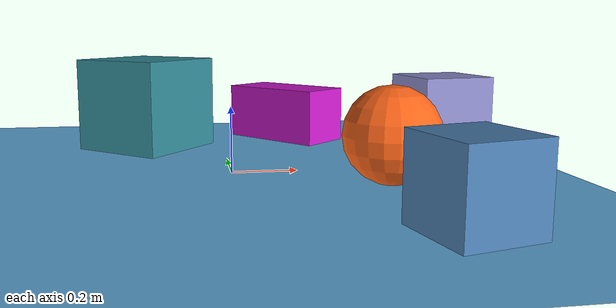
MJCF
<mujoco>
   <asset>
<texture type="skybox" builtin="gradient" rgb1="0.6 0.6 0.2" rgb2="0.0 0.9 0.9" width="500" height="500"/>
<texture name="flat_0" builtin="flat" rgb1="0.8 0.1 0.8" rgb2="0.8 0.1 0.8"  width="500" height="500"/>
<texture name="checker_1" builtin="checker" rgb1="0.5 0.3 0.8" rgb2="0.6 0.8 0.8" width="500" height="500"/>
<texture name="flat_2" builtin="flat" rgb1="0.3 0.5 0.7" rgb2="0.3 0.5 0.7"  width="500" height="500"/>
<texture name="gradient_3" builtin="gradient" rgb1="0.2 0.8 0.6" rgb2="0.2 0.3 0.6" width="500" height="500"/>
<texture name="flat_4" builtin="flat" rgb1="1.0 0.4 0.1" rgb2="1.0 0.4 0.1"  width="500" height="500"/><material name="flat_0_mat" reflectance="0.8702273378445726" texture="flat_0" texuniform="true"/>
<material name="checker_1_mat" reflectance="0.2954983985310804" texrepeat="3 3" texture="checker_1" texuniform="false" />
<material name="flat_2_mat" reflectance="0.3311697249422122" texture="flat_2" texuniform="true"/>
<material name="gradient_3_mat" reflectance="0.9710840640426902" texture="gradient_3" texuniform="true"/>
<material name="flat_4_mat" reflectance="0.7936135570455587" texture="flat_4" texuniform="true"/>
   </asset>

   <worldbody>
     <geom type="plane" size="1 1 0.1" rgba="0.4 0.7 0.9 1" />
<light pos="0.5947453503411784 -0.26116056454713976 2" dir="0 0 -1" cutoff="90" diffuse="1 1 1" specular="1 1 1"/>
<light pos="0.682266675419599 0.22458924151459514 2" dir="0 0 -1" cutoff="90" diffuse="1 1 1" specular="1 1 1"/>
<geom type="box" pos="0.26 0.6 0.1" size="0.1 0.2 0.1" material="flat_0_mat" euler="0 0 41" />
<geom type="box" pos="0.79 0.32 0.13" size="0.13 0.13 0.13" material="checker_1_mat" euler="0 0 8" />
<geom type="box" pos="0.47 -0.64 0.11" size="0.11 0.11 0.11" material="flat_2_mat" euler="0 0 13" />
<geom type="box" pos="-0.27 0.48 0.16" size="0.17 0.17 0.16" material="gradient_3_mat" euler="0 0 51" />
<geom type="sphere" pos="0.43 -0.21 0.14" size="0.14 0.14 0.14" material="flat_4_mat" euler="0 0 63" /><camera euler="60 0 180" fovy="60" name="camera1" pos="-0.2 -1.5 1"></camera>   </worldbody>
   <visual>
      <headlight diffuse="0.7 0.7 0.7"/>
   </visual>
</mujoco>
